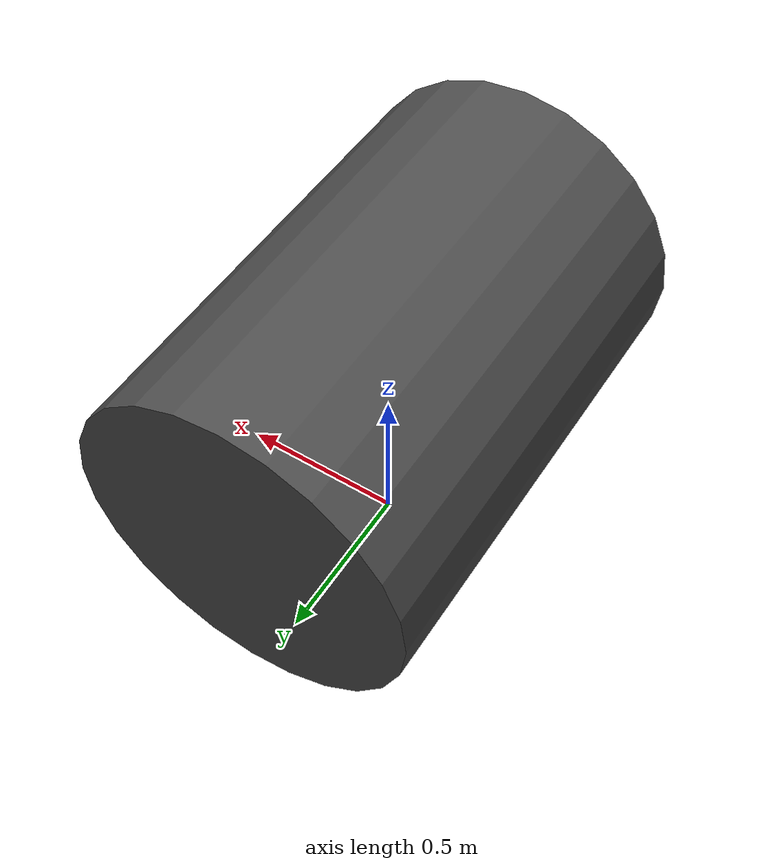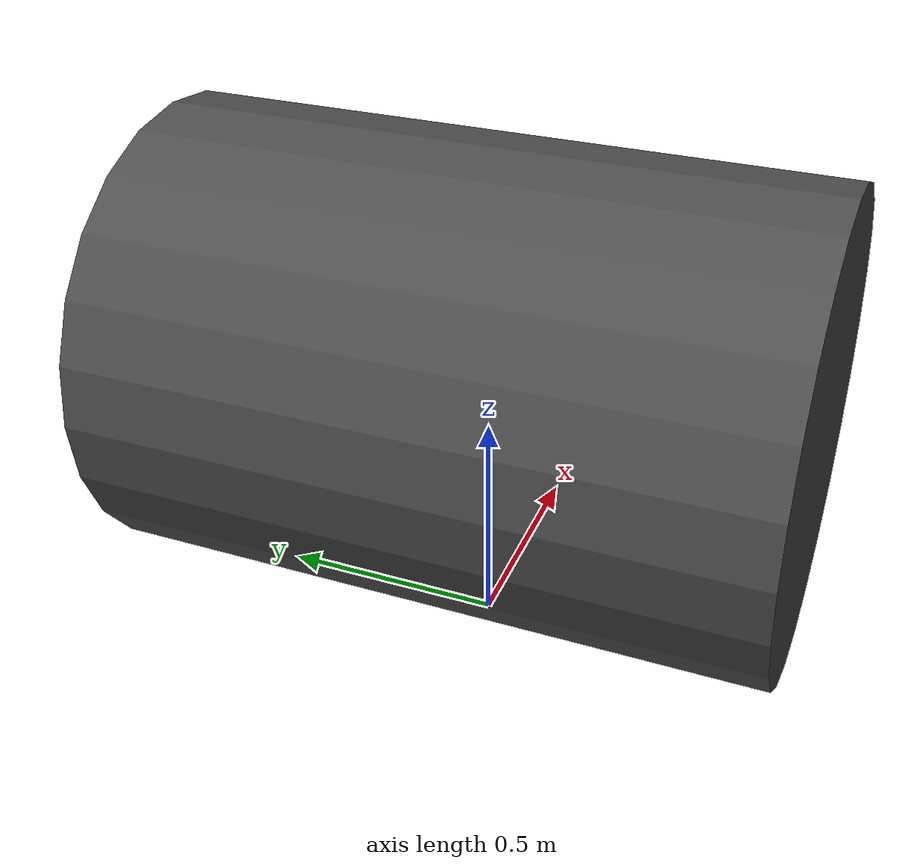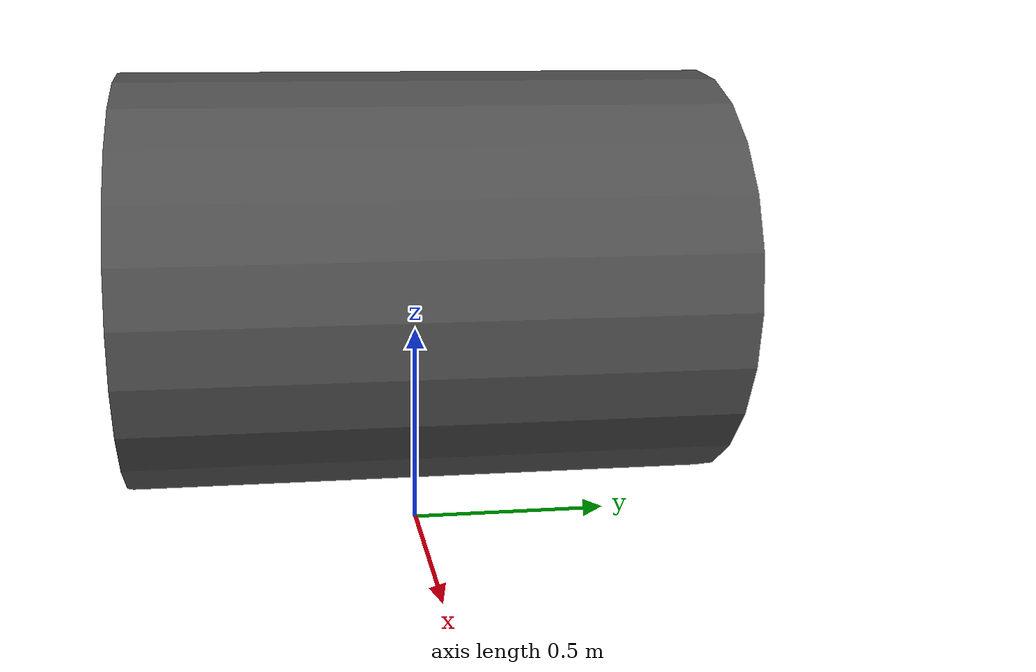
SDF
<?xml version='1.0'?>
<sdf version="1.5">
<model name="cylinder_box">
  <pose>0 0 0.64 1.57079 0 0</pose>
  <static>true</static>
    <link name="link">
      <inertial>
        <mass>1.0</mass>
        <inertia> <!-- interias are tricky to compute -->
          <!-- http://answers.gazebosim.org/question/4372/the-inertia-matrix-explained/ -->
          <ixx>0.083</ixx>       <!-- for a box: ixx = 0.083 * mass * (y*y + z*z) -->
          <ixy>0.0</ixy>         <!-- for a box: ixy = 0 -->
          <ixz>0.0</ixz>         <!-- for a box: ixz = 0 -->
          <iyy>0.083</iyy>       <!-- for a box: iyy = 0.083 * mass * (x*x + z*z) -->
          <iyz>0.0</iyz>         <!-- for a box: iyz = 0 -->
          <izz>0.083</izz>       <!-- for a box: izz = 0.083 * mass * (x*x + y*y) -->
        </inertia>
      </inertial>
      <collision name="collision">
        <geometry>
          <cylinder>
		<length>1.4</length>
		<radius>0.5</radius>
          </cylinder>
        </geometry>
      </collision>
      <visual name="visual">
        <geometry>
          <cylinder>
		<length>1.4</length>
		<radius>0.5</radius>
          </cylinder>
        </geometry>
	<material>
          <script>
            <uri>file://media/materials/scripts/gazebo.material</uri>
            <name>Gazebo/DarkGrey</name>
          </script>
        </material>
      </visual>
    </link>
  </model>
</sdf>
